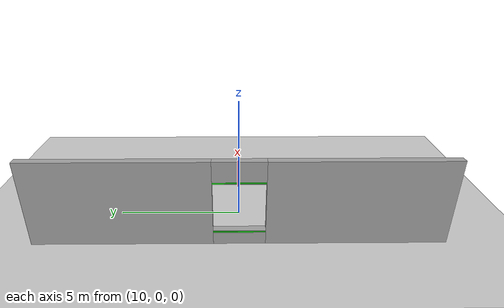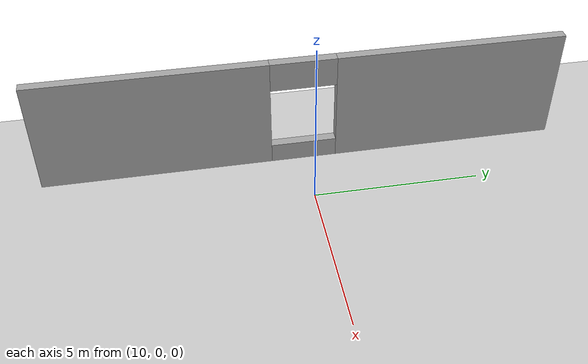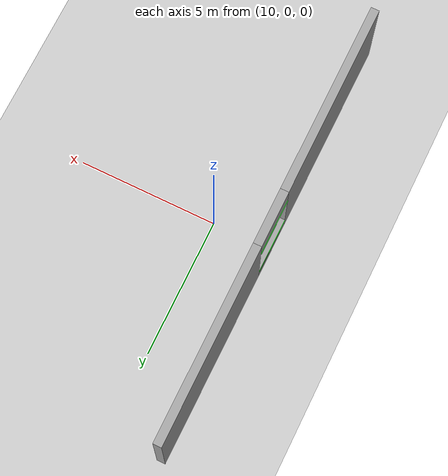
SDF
<?xml version="1.0" ?>
<sdf version="1.6">
  <world name="wall_with_hole">

    <physics type="ode">
      <max_step_size>0.001</max_step_size>
      <real_time_factor>1.0</real_time_factor>
      <real_time_update_rate>1000</real_time_update_rate>
      <gravity>0 0 -9.81</gravity>
      <ode>
        <solver><type>quick</type><iters>50</iters><sor>1.3</sor></solver>
        <constraints>
          <cfm>0.0</cfm><erp>0.2</erp>
          <contact_max_correcting_vel>100.0</contact_max_correcting_vel>
          <contact_surface_layer>0.001</contact_surface_layer>
        </constraints>
      </ode>
    </physics>

    <scene>
      <ambient>0.5 0.5 0.5 1.0</ambient>
      <shadows>false</shadows>
      <grid>false</grid>
    </scene>

    <include><uri>model://sun</uri></include>
    <include><uri>model://ground_plane</uri></include>

    <!-- Wall thickness: 0.3m  (x: 7.85 to 8.15) -->

    <!-- 1. Left panel: y = -8 to -1.0  (width=7m, center_y=-4.5) -->
    <model name="wall_left">
      <static>true</static>
      <pose>8 -4.5 1.75 0 0 0</pose>
      <link name="link">
        <collision name="collision">
          <geometry><box><size>0.3 7 3.5</size></box></geometry>
        </collision>
        <visual name="visual">
          <geometry><box><size>0.3 7 3.5</size></box></geometry>
          <material>
            <ambient>0.65 0.65 0.65 1.0</ambient>
            <diffuse>0.65 0.65 0.65 1.0</diffuse>
          </material>
        </visual>
      </link>
    </model>

    <!-- 2. Right panel: y = +1.0 to +8  (width=7m, center_y=+4.5) -->
    <model name="wall_right">
      <static>true</static>
      <pose>8 4.5 1.75 0 0 0</pose>
      <link name="link">
        <collision name="collision">
          <geometry><box><size>0.3 7 3.5</size></box></geometry>
        </collision>
        <visual name="visual">
          <geometry><box><size>0.3 7 3.5</size></box></geometry>
          <material>
            <ambient>0.65 0.65 0.65 1.0</ambient>
            <diffuse>0.65 0.65 0.65 1.0</diffuse>
          </material>
        </visual>
      </link>
    </model>

    <!-- 3. Bottom strip: y=-1.0 to +1.0 (width=2m), z=0 to 0.6m (height=0.6, center_z=0.3) -->
    <model name="wall_bottom_strip">
      <static>true</static>
      <pose>8 0 0.3 0 0 0</pose>
      <link name="link">
        <collision name="collision">
          <geometry><box><size>0.3 2 0.6</size></box></geometry>
        </collision>
        <visual name="visual">
          <geometry><box><size>0.3 2 0.6</size></box></geometry>
          <material>
            <ambient>0.65 0.65 0.65 1.0</ambient>
            <diffuse>0.65 0.65 0.65 1.0</diffuse>
          </material>
        </visual>
      </link>
    </model>

    <!-- 4. Top strip: y=-1.0 to +1.0 (width=2m), z=2.6 to 3.5m (height=0.9, center_z=3.05) -->
    <model name="wall_top_strip">
      <static>true</static>
      <pose>8 0 3.05 0 0 0</pose>
      <link name="link">
        <collision name="collision">
          <geometry><box><size>0.3 2 0.9</size></box></geometry>
        </collision>
        <visual name="visual">
          <geometry><box><size>0.3 2 0.9</size></box></geometry>
          <material>
            <ambient>0.65 0.65 0.65 1.0</ambient>
            <diffuse>0.65 0.65 0.65 1.0</diffuse>
          </material>
        </visual>
      </link>
    </model>

    <!-- Visual marker: thin colored frame around the hole for visibility -->
    <!-- Top edge of hole -->
    <model name="hole_marker_top">
      <static>true</static>
      <pose>7.84 0 2.65 0 0 0</pose>
      <link name="link">
        <visual name="v">
          <geometry><box><size>0.02 2.0 0.05</size></box></geometry>
          <material><ambient>0.1 0.9 0.1 1</ambient><diffuse>0.1 0.9 0.1 1</diffuse></material>
        </visual>
      </link>
    </model>

    <!-- Bottom edge of hole -->
    <model name="hole_marker_bottom">
      <static>true</static>
      <pose>7.84 0 0.55 0 0 0</pose>
      <link name="link">
        <visual name="v">
          <geometry><box><size>0.02 2.0 0.05</size></box></geometry>
          <material><ambient>0.1 0.9 0.1 1</ambient><diffuse>0.1 0.9 0.1 1</diffuse></material>
        </visual>
      </link>
    </model>

  </world>
</sdf>
